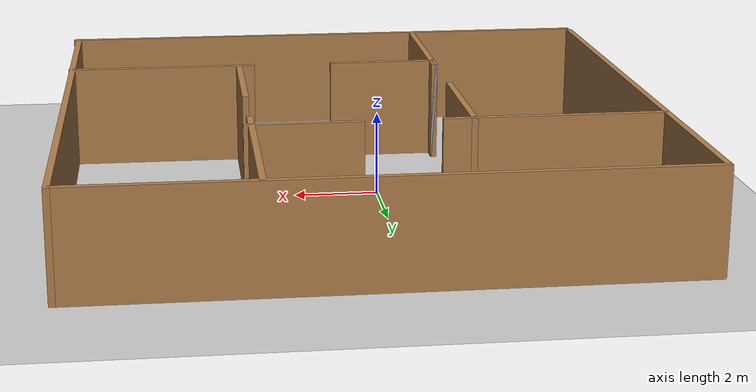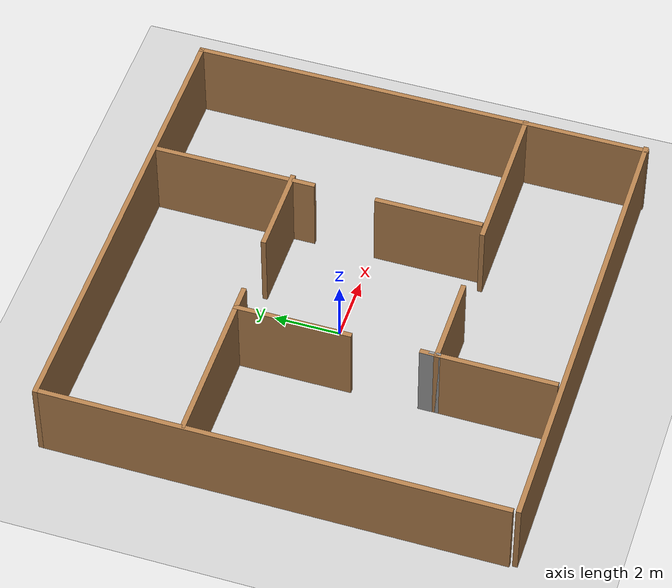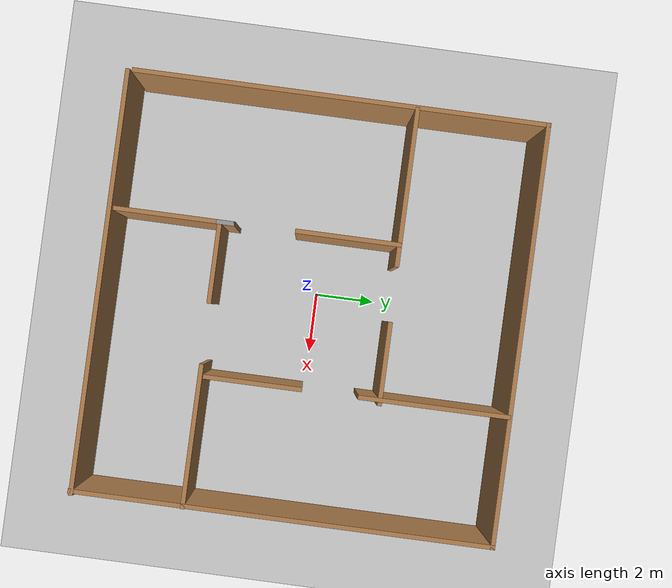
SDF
<sdf version="1.6">
 <world name="default">
  <light name="sun" type="directional">
   <pose>0 0 10 0 -0 0</pose>
   <diffuse>0.8 0.8 0.8 1</diffuse>
   <specular>0.2 0.2 0.2 1</specular>
   <attenuation>
    <range>1000</range>
    <constant>0.9</constant>
    <linear>0.01</linear>
    <quadratic>0.001</quadratic>
   </attenuation>
   <direction>-0.5 0.1 -0.9</direction>
  </light>
  <model name="ground_plane">
   <static>1</static>
   <link name="link">
    <collision name="collision">
     <geometry><plane><normal>0 0 1</normal><size>100 100</size></plane></geometry>
     <surface><friction><ode><mu>100</mu><mu2>50</mu2></ode></friction></surface>
    </collision>
    <visual name="visual">
     <cast_shadows>0</cast_shadows>
     <geometry><plane><normal>0 0 1</normal><size>100 100</size></plane></geometry>
     <material>
      <script><uri>file://media/materials/scripts/gazebo.material</uri><name>Gazebo/Grey</name></script>
     </material>
    </visual>
   </link>
  </model>
  <gravity>0 0 -9.8</gravity>
  <magnetic_field>6e-06 2.3e-05 -4.2e-05</magnetic_field>
  <atmosphere type="adiabatic"/>
  <physics name="default_physics" default="0" type="ode">
   <max_step_size>0.001</max_step_size>
   <real_time_factor>1</real_time_factor>
   <real_time_update_rate>1000</real_time_update_rate>
  </physics>
  <scene><ambient>0.4 0.4 0.4 1</ambient><background>0.7 0.7 0.7 1</background><shadows>1</shadows></scene>
  <audio><device>default</device></audio>
  <spherical_coordinates>
   <surface_model>EARTH_WGS84</surface_model>
   <latitude_deg>0</latitude_deg>
   <longitude_deg>0</longitude_deg>
   <elevation>0</elevation>
   <heading_deg>0</heading_deg>
  </spherical_coordinates>
  <model name="world1">
   <pose>0.528755 -0.179235 0 0 -0 0</pose>
   <link name="Wall_1">
    <collision name="Wall_1_Collision">
     <geometry><box><size>14 0.15 2.5</size></box></geometry>
     <pose>0 0 1.25 0 -0 0</pose>
    </collision>
    <visual name="Wall_1_Visual">
     <pose>0 0 1.25 0 -0 0</pose>
     <geometry><box><size>14 0.15 2.5</size></box></geometry>
     <material>
      <script><uri>file://media/materials/scripts/gazebo.material</uri><name>Gazebo/Wood</name></script>
      <ambient>1 1 1 1</ambient>
     </material>
     <meta><layer>0</layer></meta>
    </visual>
    <pose>0.029914 -6.89461 0 0 -0 0</pose>
   </link>
   <link name="Wall_22">
    <collision name="Wall_22_Collision">
     <geometry><box><size>5.25 0.15 2.5</size></box></geometry>
     <pose>0 0 1.25 0 -0 0</pose>
    </collision>
    <visual name="Wall_22_Visual">
     <pose>0 0 1.25 0 -0 0</pose>
     <geometry><box><size>5.25 0.15 2.5</size></box></geometry>
     <material>
      <script><uri>file://media/materials/scripts/gazebo.material</uri><name>Gazebo/Wood</name></script>
      <ambient>1 1 1 1</ambient>
     </material>
     <meta><layer>0</layer></meta>
    </visual>
    <pose>-4.34837 2.63249 0 0 -0 0</pose>
   </link>
   <link name="Wall_24">
    <collision name="Wall_24_Collision">
     <geometry><box><size>2.75 0.15 2.5</size></box></geometry>
     <pose>0 0 1.25 0 -0 0</pose>
    </collision>
    <visual name="Wall_24_Visual">
     <pose>0 0 1.25 0 -0 0</pose>
     <geometry><box><size>2.75 0.15 2.5</size></box></geometry>
     <material>
      <script><uri>file://media/materials/scripts/gazebo.material</uri><name>Gazebo/Wood</name></script>
      <ambient>1 1 1 1</ambient>
     </material>
     <meta><layer>0</layer></meta>
    </visual>
    <pose>1.44824 2.66807 0 0 -0 0</pose>
   </link>
   <link name="Wall_26">
    <collision name="Wall_26_Collision">
     <geometry><box><size>5 0.15 2.5</size></box></geometry>
     <pose>0 0 1.25 0 -0 0</pose>
    </collision>
    <visual name="Wall_26_Visual">
     <pose>0 0 1.25 0 -0 0</pose>
     <geometry><box><size>5 0.15 2.5</size></box></geometry>
     <material>
      <script><uri>file://media/materials/scripts/gazebo.material</uri><name>Gazebo/Wood</name></script>
      <ambient>1 1 1 1</ambient>
     </material>
     <meta><layer>0</layer></meta>
    </visual>
    <pose>2.63692 4.44145 0 0 -0 -1.5708</pose>
   </link>
   <link name="Wall_28">
    <collision name="Wall_28_Collision">
     <geometry><box><size>3.25 0.15 2.5</size></box></geometry>
     <pose>0 0 1.25 0 -0 0</pose>
    </collision>
    <visual name="Wall_28_Visual">
     <pose>0 0 1.25 0 -0 0</pose>
     <geometry><box><size>3.25 0.15 2.5</size></box></geometry>
     <material>
      <script><uri>file://media/materials/scripts/gazebo.material</uri><name>Gazebo/Wood</name></script>
      <ambient>1 1 1 1</ambient>
     </material>
     <meta><layer>0</layer></meta>
    </visual>
    <pose>2.63692 -1.51669 0 0 -0 -1.5708</pose>
   </link>
   <link name="Wall_3">
    <collision name="Wall_3_Collision">
     <geometry><box><size>14 0.15 2.5</size></box></geometry>
     <pose>0 0 1.25 0 -0 0</pose>
    </collision>
    <visual name="Wall_3_Visual">
     <pose>0 0 1.25 0 -0 0</pose>
     <geometry><box><size>14 0.15 2.5</size></box></geometry>
     <material>
      <script><uri>file://media/materials/scripts/gazebo.material</uri><name>Gazebo/Wood</name></script>
      <ambient>1 1 1 1</ambient>
     </material>
     <meta><layer>0</layer></meta>
    </visual>
    <pose>6.89509 -0 0 0 -0 -1.5708</pose>
   </link>
   <link name="Wall_30">
    <collision name="Wall_30_Collision">
     <geometry><box><size>3.5 0.15 2.5</size></box></geometry>
     <pose>0 0 1.25 0 -0 0</pose>
    </collision>
    <visual name="Wall_30_Visual">
     <pose>0 0 1.25 0 -0 0</pose>
     <geometry><box><size>3.5 0.15 2.5</size></box></geometry>
     <material>
      <script><uri>file://media/materials/scripts/gazebo.material</uri><name>Gazebo/Wood</name></script>
      <ambient>1 1 1 1</ambient>
     </material>
     <meta><layer>0</layer></meta>
    </visual>
    <pose>-2.45094 0.957494 0 0 -0 -1.5708</pose>
   </link>
   <link name="Wall_33">
    <collision name="Wall_33_Collision">
     <geometry><box><size>0.606738 0.15 2.5</size></box></geometry>
     <pose>0 0 1.25 0 -0 0</pose>
    </collision>
    <visual name="Wall_33_Visual">
     <pose>0 0 1.25 0 -0 0</pose>
     <geometry><box><size>0.606738 0.15 2.5</size></box></geometry>
     <material>
      <script><uri>file://media/materials/scripts/gazebo.material</uri><name>Gazebo/Grey</name></script>
      <ambient>1 1 1 1</ambient>
     </material>
     <meta><layer>0</layer></meta>
    </visual>
    <pose>-2.41536 -3.07511 0 0 -0 -1.5708</pose>
   </link>
   <link name="Wall_36">
    <collision name="Wall_36_Collision">
     <geometry><box><size>4 0.15 2.5</size></box></geometry>
     <pose>0 0 1.25 0 -0 0</pose>
    </collision>
    <visual name="Wall_36_Visual">
     <pose>0 0 1.25 0 -0 0</pose>
     <geometry><box><size>4 0.15 2.5</size></box></geometry>
     <material>
      <script><uri>file://media/materials/scripts/gazebo.material</uri><name>Gazebo/Wood</name></script>
      <ambient>1 1 1 1</ambient>
     </material>
     <meta><layer>0</layer></meta>
    </visual>
    <pose>-2.41536 -4.77174 0 0 -0 -1.5708</pose>
   </link>
   <link name="Wall_38">
    <collision name="Wall_38_Collision">
     <geometry><box><size>2.75 0.15 2.5</size></box></geometry>
     <pose>0 0 1.25 0 -0 0</pose>
    </collision>
    <visual name="Wall_38_Visual">
     <pose>0 0 1.25 0 -0 0</pose>
     <geometry><box><size>2.75 0.15 2.5</size></box></geometry>
     <material>
      <script><uri>file://media/materials/scripts/gazebo.material</uri><name>Gazebo/Wood</name></script>
      <ambient>1 1 1 1</ambient>
     </material>
     <meta><layer>0</layer></meta>
    </visual>
    <pose>-1.11536 -3.2679 0 0 -0 0</pose>
   </link>
   <link name="Wall_40">
    <collision name="Wall_40_Collision">
     <geometry><box><size>4.75 0.15 2.5</size></box></geometry>
     <pose>0 0 1.25 0 -0 0</pose>
    </collision>
    <visual name="Wall_40_Visual">
     <pose>0 0 1.25 0 -0 0</pose>
     <geometry><box><size>4.75 0.15 2.5</size></box></geometry>
     <material>
      <script><uri>file://media/materials/scripts/gazebo.material</uri><name>Gazebo/Wood</name></script>
      <ambient>1 1 1 1</ambient>
     </material>
     <meta><layer>0</layer></meta>
    </visual>
    <pose>4.61576 -3.23811 0 0 -0 0</pose>
   </link>
   <link name="Wall_6">
    <collision name="Wall_6_Collision">
     <geometry><box><size>14 0.15 2.5</size></box></geometry>
     <pose>0 0 1.25 0 -0 0</pose>
    </collision>
    <visual name="Wall_6_Visual">
     <pose>0 0 1.25 0 -0 0</pose>
     <geometry><box><size>14 0.15 2.5</size></box></geometry>
     <material>
      <script><uri>file://media/materials/scripts/gazebo.material</uri><name>Gazebo/Wood</name></script>
      <ambient>1 1 1 1</ambient>
     </material>
     <meta><layer>0</layer></meta>
    </visual>
    <pose>-0.029913 6.925 0 0 -0 3.14159</pose>
   </link>
   <link name="Wall_7">
    <collision name="Wall_7_Collision">
     <geometry><box><size>13.75 0.15 2.5</size></box></geometry>
     <pose>0 0 1.25 0 -0 0</pose>
    </collision>
    <visual name="Wall_7_Visual">
     <pose>0 0 1.25 0 -0 0</pose>
     <geometry><box><size>13.75 0.15 2.5</size></box></geometry>
     <material>
      <script><uri>file://media/materials/scripts/gazebo.material</uri><name>Gazebo/Wood</name></script>
      <ambient>1 1 1 1</ambient>
     </material>
     <meta><layer>0</layer></meta>
    </visual>
    <pose>-6.95491 0.125 0 0 -0 -1.5708</pose>
   </link>
   <static>1</static>
  </model>
 </world>
</sdf>
